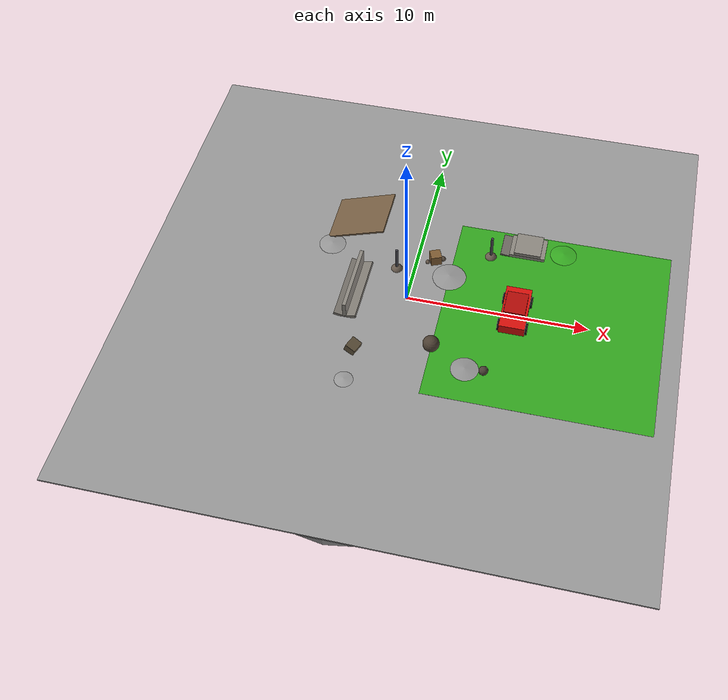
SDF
<?xml version="1.0" ?>
<sdf version="1.6">
  <world name="outdoor_car_benchmark">

    <light name="sun" type="directional">
      <cast_shadows>true</cast_shadows>
      <pose>0 0 10 0 0 0</pose>
      <diffuse>0.9 0.9 0.9 1</diffuse>
      <specular>0.3 0.3 0.3 1</specular>
      <direction>-0.5 0.1 -0.9</direction>
    </light>

    <physics type="ode">
      <real_time_update_rate>1000</real_time_update_rate>
      <max_step_size>0.001</max_step_size>
    </physics>

    <model name="ground_concrete">
      <static>true</static>
      <pose>0 0 -0.05 0 0 0</pose>
      <link name="link">
        <collision name="col">
          <geometry><box><size>30 30 0.1</size></box></geometry>
        </collision>
        <visual name="vis">
          <geometry><box><size>30 30 0.1</size></box></geometry>
          <material>
            <ambient>0.55 0.55 0.55 1</ambient>
            <diffuse>0.60 0.60 0.60 1</diffuse>
          </material>
        </visual>
      </link>
    </model>

    <model name="grass_area">
      <static>true</static>
      <pose>8 0 -0.019 0 0 0</pose>
      <link name="link">
        <collision name="col">
          <geometry><box><size>12 12 0.04</size></box></geometry>
        </collision>
        <visual name="vis">
          <geometry><box><size>12 12 0.04</size></box></geometry>
          <material>
            <ambient>0.15 0.55 0.10 1</ambient>
            <diffuse>0.20 0.65 0.12 1</diffuse>
          </material>
        </visual>
      </link>
    </model>

    <model name="terrain_ripple_1">
      <static>true</static>
      <pose>2 2 -4.85 0 0 0</pose>
      <link name="link">
        <collision name="col"><geometry><sphere><radius>5.0</radius></sphere></geometry></collision>
        <visual name="vis">
          <geometry><sphere><radius>5.0</radius></sphere></geometry>
          <material><ambient>0.53 0.53 0.53 1</ambient><diffuse>0.58 0.58 0.58 1</diffuse></material>
        </visual>
      </link>
    </model>

    <model name="terrain_ripple_2">
      <static>true</static>
      <pose>-5 3 -3.88 0 0 0</pose>
      <link name="link">
        <collision name="col"><geometry><sphere><radius>4.0</radius></sphere></geometry></collision>
        <visual name="vis">
          <geometry><sphere><radius>4.0</radius></sphere></geometry>
          <material><ambient>0.54 0.54 0.54 1</ambient><diffuse>0.59 0.59 0.59 1</diffuse></material>
        </visual>
      </link>
    </model>

    <model name="terrain_ripple_3">
      <static>true</static>
      <pose>4 -4 -4.38 0 0 0</pose>
      <link name="link">
        <collision name="col"><geometry><sphere><radius>4.5</radius></sphere></geometry></collision>
        <visual name="vis">
          <geometry><sphere><radius>4.5</radius></sphere></geometry>
          <material><ambient>0.52 0.52 0.52 1</ambient><diffuse>0.57 0.57 0.57 1</diffuse></material>
        </visual>
      </link>
    </model>

    <model name="terrain_ripple_4">
      <static>true</static>
      <pose>-2 -6 -5.92 0 0 0</pose>
      <link name="link">
        <collision name="col"><geometry><sphere><radius>6.0</radius></sphere></geometry></collision>
        <visual name="vis">
          <geometry><sphere><radius>6.0</radius></sphere></geometry>
          <material><ambient>0.55 0.55 0.55 1</ambient><diffuse>0.60 0.60 0.60 1</diffuse></material>
        </visual>
      </link>
    </model>

    <model name="terrain_ripple_5">
      <static>true</static>
      <pose>8 5 -4.88 0 0 0</pose>
      <link name="link">
        <collision name="col"><geometry><sphere><radius>5.0</radius></sphere></geometry></collision>
        <visual name="vis">
          <geometry><sphere><radius>5.0</radius></sphere></geometry>
          <material><ambient>0.16 0.56 0.11 1</ambient><diffuse>0.21 0.66 0.13 1</diffuse></material>
        </visual>
      </link>
    </model>

    <model name="ramp">
      <static>true</static>
      <pose>-4 5 0.45 0 -0.35 0</pose>
      <link name="link">
        <collision name="col">
          <geometry><box><size>4 3 0.1</size></box></geometry>
        </collision>
        <visual name="vis">
          <geometry><box><size>4 3 0.1</size></box></geometry>
          <material>
            <ambient>0.40 0.32 0.22 1</ambient>
            <diffuse>0.45 0.36 0.25 1</diffuse>
          </material>
        </visual>
      </link>
    </model>

    <model name="rock_1">
      <static>true</static>
      <pose>2 -3 0.35 0.2 0.1 0.5</pose>
      <link name="link">
        <collision name="col">
          <geometry><sphere><radius>0.45</radius></sphere></geometry>
        </collision>
        <visual name="vis">
          <geometry><sphere><radius>0.45</radius></sphere></geometry>
          <material><ambient>0.30 0.25 0.20 1</ambient></material>
        </visual>
      </link>
    </model>

    <model name="rock_2">
      <static>true</static>
      <pose>-2 -4 0.25 0.3 0 1.2</pose>
      <link name="link">
        <collision name="col">
          <geometry><box><size>0.7 0.6 0.5</size></box></geometry>
        </collision>
        <visual name="vis">
          <geometry><box><size>0.7 0.6 0.5</size></box></geometry>
          <material><ambient>0.35 0.30 0.22 1</ambient></material>
        </visual>
      </link>
    </model>

    <model name="rock_3">
      <static>true</static>
      <pose>5 -4 0.18 0.1 0.2 0.8</pose>
      <link name="link">
        <collision name="col">
          <geometry><sphere><radius>0.25</radius></sphere></geometry>
        </collision>
        <visual name="vis">
          <geometry><sphere><radius>0.25</radius></sphere></geometry>
          <material><ambient>0.28 0.24 0.20 1</ambient></material>
        </visual>
      </link>
    </model>

    <model name="wall_1">
      <static>true</static>
      <pose>-3 0 0.5 0 0 0</pose>
      <link name="link">
        <collision name="col">
          <geometry><box><size>0.2 4 1.0</size></box></geometry>
        </collision>
        <visual name="vis">
          <geometry><box><size>0.2 4 1.0</size></box></geometry>
          <material>
            <ambient>0.50 0.48 0.45 1</ambient>
            <diffuse>0.55 0.53 0.50 1</diffuse>
          </material>
        </visual>
      </link>
    </model>

    <model name="wall_1_slope_left">
      <static>true</static>
      <pose>-3.32 0 0.08 0 0.25 0</pose>
      <link name="link">
        <collision name="col"><geometry><box><size>0.6 4 0.16</size></box></geometry></collision>
        <visual name="vis">
          <geometry><box><size>0.6 4 0.16</size></box></geometry>
          <material><ambient>0.45 0.43 0.40 1</ambient><diffuse>0.50 0.48 0.45 1</diffuse></material>
        </visual>
      </link>
    </model>

    <model name="wall_1_slope_right">
      <static>true</static>
      <pose>-2.68 0 0.08 0 -0.25 0</pose>
      <link name="link">
        <collision name="col"><geometry><box><size>0.6 4 0.16</size></box></geometry></collision>
        <visual name="vis">
          <geometry><box><size>0.6 4 0.16</size></box></geometry>
          <material><ambient>0.45 0.43 0.40 1</ambient><diffuse>0.50 0.48 0.45 1</diffuse></material>
        </visual>
      </link>
    </model>

    <model name="box_1">
      <static>true</static>
      <pose>1 3 0.3 0 0 0.4</pose>
      <link name="link">
        <collision name="col">
          <geometry><box><size>0.6 0.6 0.6</size></box></geometry>
        </collision>
        <visual name="vis">
          <geometry><box><size>0.6 0.6 0.6</size></box></geometry>
          <material>
            <ambient>0.45 0.32 0.18 1</ambient>
            <diffuse>0.50 0.36 0.20 1</diffuse>
          </material>
        </visual>
      </link>
    </model>

    <model name="box_1_gravel_1">
      <static>true</static>
      <pose>1.4 3.2 0.05 0 0 0</pose>
      <link name="link">
        <collision name="col"><geometry><sphere><radius>0.15</radius></sphere></geometry></collision>
        <visual name="vis">
          <geometry><sphere><radius>0.15</radius></sphere></geometry>
          <material><ambient>0.35 0.30 0.25 1</ambient></material>
        </visual>
      </link>
    </model>

    <model name="box_1_gravel_2">
      <static>true</static>
      <pose>0.6 2.8 0.04 0 0 0</pose>
      <link name="link">
        <collision name="col"><geometry><sphere><radius>0.12</radius></sphere></geometry></collision>
        <visual name="vis">
          <geometry><sphere><radius>0.12</radius></sphere></geometry>
          <material><ambient>0.38 0.33 0.28 1</ambient></material>
        </visual>
      </link>
    </model>

    <model name="pole_1">
      <static>true</static>
      <pose>-1 2 0.75 0 0 0</pose>
      <link name="link">
        <collision name="col">
          <geometry><cylinder><radius>0.08</radius><length>1.5</length></cylinder></geometry>
        </collision>
        <visual name="vis">
          <geometry><cylinder><radius>0.08</radius><length>1.5</length></cylinder></geometry>
          <material>
            <ambient>0.20 0.20 0.22 1</ambient>
            <diffuse>0.25 0.25 0.28 1</diffuse>
          </material>
        </visual>
      </link>
    </model>

    <model name="pole_1_mound">
      <static>true</static>
      <pose>-1 2 -0.12 0 0 0</pose>
      <link name="link">
        <collision name="col"><geometry><sphere><radius>0.35</radius></sphere></geometry></collision>
        <visual name="vis">
          <geometry><sphere><radius>0.35</radius></sphere></geometry>
          <material><ambient>0.40 0.35 0.30 1</ambient></material>
        </visual>
      </link>
    </model>

    <model name="pole_2">
      <static>true</static>
      <pose>4 4 0.75 0 0 0</pose>
      <link name="link">
        <collision name="col">
          <geometry><cylinder><radius>0.08</radius><length>1.5</length></cylinder></geometry>
        </collision>
        <visual name="vis">
          <geometry><cylinder><radius>0.08</radius><length>1.5</length></cylinder></geometry>
          <material>
            <ambient>0.20 0.20 0.22 1</ambient>
            <diffuse>0.25 0.25 0.28 1</diffuse>
          </material>
        </visual>
      </link>
    </model>

    <model name="pole_2_mound">
      <static>true</static>
      <pose>4 4 -0.12 0 0 0</pose>
      <link name="link">
        <collision name="col"><geometry><sphere><radius>0.35</radius></sphere></geometry></collision>
        <visual name="vis">
          <geometry><sphere><radius>0.35</radius></sphere></geometry>
          <material><ambient>0.40 0.35 0.30 1</ambient></material>
        </visual>
      </link>
    </model>

    <model name="step_1">
      <static>true</static>
      <pose>6 5 0.1 0 0 0</pose>
      <link name="link">
        <collision name="col">
          <geometry><box><size>2 1.5 0.2</size></box></geometry>
        </collision>
        <visual name="vis">
          <geometry><box><size>2 1.5 0.2</size></box></geometry>
          <material>
            <ambient>0.50 0.48 0.45 1</ambient>
            <diffuse>0.55 0.53 0.50 1</diffuse>
          </material>
        </visual>
      </link>
    </model>

    <model name="step_2">
      <static>true</static>
      <pose>6 5 0.3 0 0 0</pose>
      <link name="link">
        <collision name="col">
          <geometry><box><size>1.5 1.5 0.2</size></box></geometry>
        </collision>
        <visual name="vis">
          <geometry><box><size>1.5 1.5 0.2</size></box></geometry>
          <material>
            <ambient>0.50 0.48 0.45 1</ambient>
            <diffuse>0.55 0.53 0.50 1</diffuse>
          </material>
        </visual>
      </link>
    </model>

    <model name="step_transition_slope">
      <static>true</static>
      <pose>4.75 5 0.04 0 0.16 0</pose>
      <link name="link">
        <collision name="col"><geometry><box><size>0.5 1.5 0.1</size></box></geometry></collision>
        <visual name="vis">
          <geometry><box><size>0.5 1.5 0.1</size></box></geometry>
          <material><ambient>0.45 0.43 0.40 1</ambient></material>
        </visual>
      </link>
    </model>

    <!-- Static visual and collision geometry share one model so camera and
         LiDAR observations refer to exactly the same target. -->
    <model name="semantic_car_target">
      <static>true</static>
      <pose>6 0 0 0 0 0</pose>
      <link name="car_body">
        <collision name="chassis_collision">
          <pose>0 0 0.55 0 0 0</pose>
          <geometry><box><size>1.4 2.8 0.55</size></box></geometry>
        </collision>
        <collision name="cabin_collision">
          <pose>0 0 1.00 0 0 0</pose>
          <geometry><box><size>1.15 1.45 0.45</size></box></geometry>
        </collision>

        <visual name="chassis_visual">
          <pose>0 0 0.55 0 0 0</pose>
          <geometry><box><size>1.4 2.8 0.55</size></box></geometry>
          <material>
            <ambient>0.70 0.04 0.03 1</ambient>
            <diffuse>0.85 0.06 0.04 1</diffuse>
            <specular>0.35 0.35 0.35 1</specular>
          </material>
        </visual>
        <visual name="cabin_visual">
          <pose>0 0 1.00 0 0 0</pose>
          <geometry><box><size>1.15 1.45 0.45</size></box></geometry>
          <material>
            <ambient>0.55 0.03 0.03 1</ambient>
            <diffuse>0.70 0.04 0.03 1</diffuse>
          </material>
        </visual>

        <visual name="left_window_visual">
          <pose>-0.581 -0.38 1.02 0 0 0</pose>
          <geometry><box><size>0.02 0.55 0.30</size></box></geometry>
          <material>
            <ambient>0.03 0.10 0.16 1</ambient>
            <diffuse>0.05 0.18 0.28 1</diffuse>
          </material>
        </visual>
        <visual name="right_window_visual">
          <pose>-0.581 0.38 1.02 0 0 0</pose>
          <geometry><box><size>0.02 0.55 0.30</size></box></geometry>
          <material>
            <ambient>0.03 0.10 0.16 1</ambient>
            <diffuse>0.05 0.18 0.28 1</diffuse>
          </material>
        </visual>

        <visual name="wheel_front_near">
          <pose>-0.72 -0.92 0.32 0 1.5708 0</pose>
          <geometry><cylinder><radius>0.32</radius><length>0.18</length></cylinder></geometry>
          <material><ambient>0.03 0.03 0.03 1</ambient><diffuse>0.04 0.04 0.04 1</diffuse></material>
        </visual>
        <visual name="wheel_rear_near">
          <pose>-0.72 0.92 0.32 0 1.5708 0</pose>
          <geometry><cylinder><radius>0.32</radius><length>0.18</length></cylinder></geometry>
          <material><ambient>0.03 0.03 0.03 1</ambient><diffuse>0.04 0.04 0.04 1</diffuse></material>
        </visual>
        <visual name="wheel_front_far">
          <pose>0.72 -0.92 0.32 0 1.5708 0</pose>
          <geometry><cylinder><radius>0.32</radius><length>0.18</length></cylinder></geometry>
          <material><ambient>0.03 0.03 0.03 1</ambient><diffuse>0.04 0.04 0.04 1</diffuse></material>
        </visual>
        <visual name="wheel_rear_far">
          <pose>0.72 0.92 0.32 0 1.5708 0</pose>
          <geometry><cylinder><radius>0.32</radius><length>0.18</length></cylinder></geometry>
          <material><ambient>0.03 0.03 0.03 1</ambient><diffuse>0.04 0.04 0.04 1</diffuse></material>
        </visual>
      </link>
    </model>

  </world>
</sdf>
